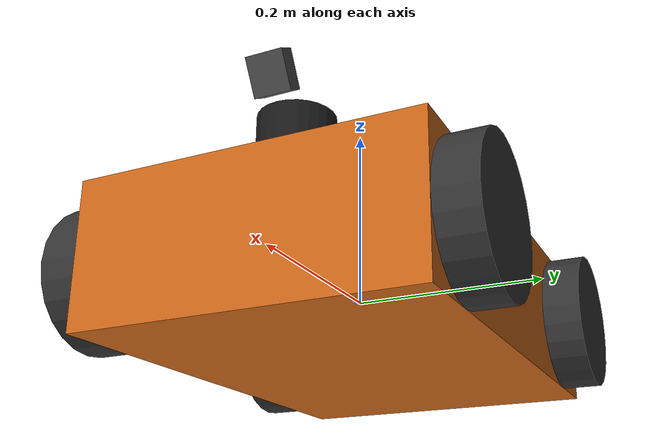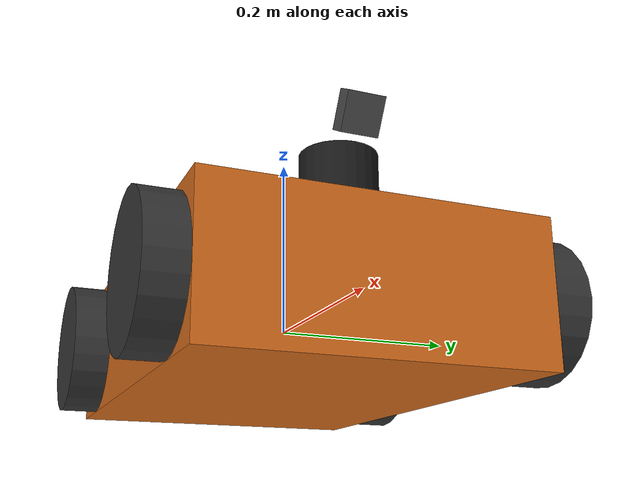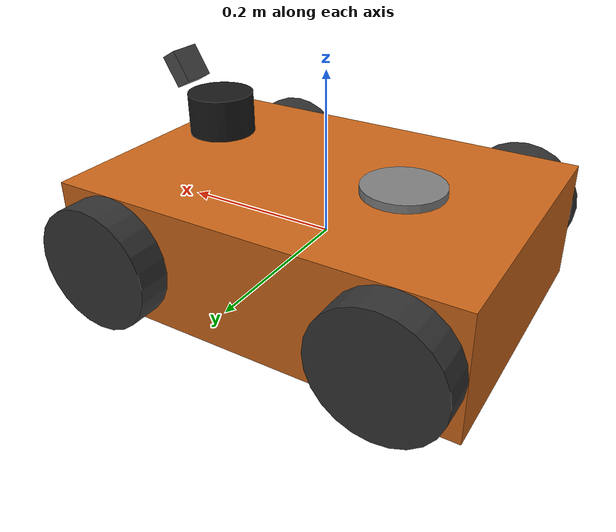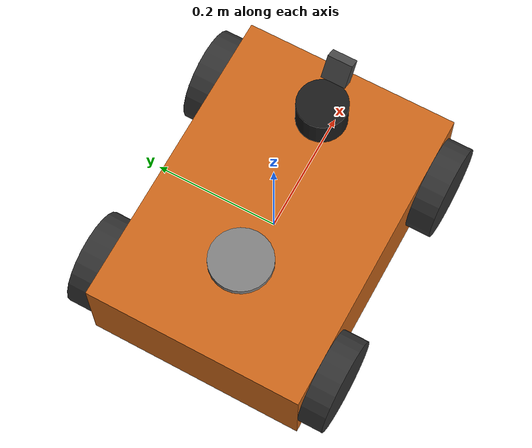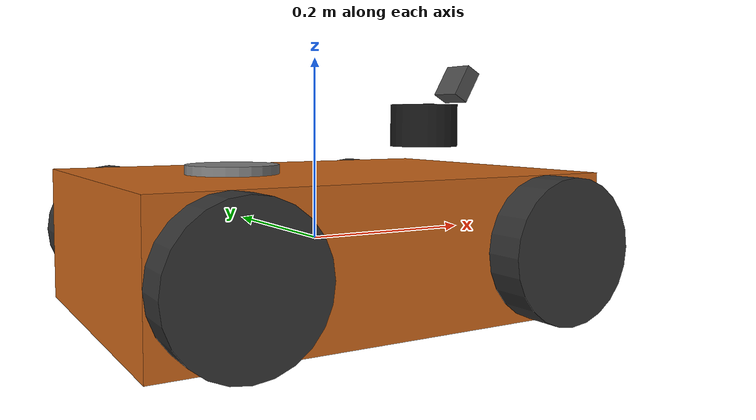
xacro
<?xml version="1.0"?>
<robot xmlns:xacro="http://www.ros.org/wiki/xacro">

  <!-- ===================== PROPERTIES ===================== -->
  <xacro:property name="base_length" value="0.5"/>
  <xacro:property name="base_width" value="0.35"/>
  <xacro:property name="base_height" value="0.15"/>
  <xacro:property name="wheel_radius" value="0.075"/>
  <xacro:property name="wheel_width" value="0.04"/>
  <xacro:property name="wheel_separation" value="0.35"/>
  <xacro:property name="wheel_base" value="0.35"/>

  <!-- ===================== INERTIA MACROS ===================== -->
  <xacro:macro name="box_inertia" params="m x y z">
    <inertia ixx="${m*(y*y+z*z)/12.0}" ixy="0.0" ixz="0.0"
             iyy="${m*(x*x+z*z)/12.0}" iyz="0.0"
             izz="${m*(x*x+y*y)/12.0}"/>
  </xacro:macro>

  <xacro:macro name="cylinder_inertia" params="m r h">
    <inertia ixx="${m*(3*r*r+h*h)/12.0}" ixy="0.0" ixz="0.0"
             iyy="${m*(3*r*r+h*h)/12.0}" iyz="0.0"
             izz="${m*r*r/2.0}"/>
  </xacro:macro>

  <!-- ===================== WHEEL MACRO ===================== -->
  <xacro:macro name="wheel" params="prefix x_offset y_offset">
    <joint name="${prefix}_joint" type="continuous">
      <parent link="body_link"/>
      <child link="${prefix}_link"/>
      <origin xyz="${x_offset} ${y_offset} 0" rpy="${-pi/2} 0 0"/>
      <axis xyz="0 0 1"/>
      <dynamics damping="0.1" friction="0.1"/>
    </joint>

    <link name="${prefix}_link">
      <visual>
        <geometry>
          <cylinder radius="${wheel_radius}" length="${wheel_width}"/>
        </geometry>
        <material name="wheel_material">
          <color rgba="0.2 0.2 0.2 1.0"/>
        </material>
      </visual>
      <collision>
        <geometry>
          <cylinder radius="${wheel_radius}" length="${wheel_width}"/>
        </geometry>
      </collision>
      <inertial>
        <mass value="0.5"/>
        <xacro:cylinder_inertia m="0.5" r="${wheel_radius}" h="${wheel_width}"/>
      </inertial>
    </link>
  </xacro:macro>

  <!-- ===================== BODY LINK ===================== -->
  <link name="body_link">
    <visual>
      <geometry>
        <box size="${base_length} ${base_width} ${base_height}"/>
      </geometry>
      <material name="base_material">
        <color rgba="0.8 0.4 0.1 1.0"/>
      </material>
    </visual>
    <collision>
      <geometry>
        <box size="${base_length} ${base_width} ${base_height}"/>
      </geometry>
    </collision>
    <inertial>
      <mass value="10.0"/>
      <xacro:box_inertia m="10.0" x="${base_length}" y="${base_width}" z="${base_height}"/>
    </inertial>
  </link>

  <!-- ===================== WHEELS ===================== -->
  <xacro:wheel prefix="front_left" x_offset="${wheel_base/2}" y_offset="${wheel_separation/2 + wheel_width/2}"/>
  <xacro:wheel prefix="front_right" x_offset="${wheel_base/2}" y_offset="${-wheel_separation/2 - wheel_width/2}"/>
  <xacro:wheel prefix="back_left" x_offset="${-wheel_base/2}" y_offset="${wheel_separation/2 + wheel_width/2}"/>
  <xacro:wheel prefix="back_right" x_offset="${-wheel_base/2}" y_offset="${-wheel_separation/2 - wheel_width/2}"/>

  <!-- ===================== ARM MOUNT ===================== -->
  <!--
    LEARNING: The arm_mount_link is where the arm attaches.
    This creates a clear separation between base and arm TF chains.
  -->
  <joint name="arm_mount_joint" type="fixed">
    <parent link="body_link"/>
    <child link="arm_mount_link"/>
    <origin xyz="-0.1 0 ${base_height/2}" rpy="0 0 0"/>
  </joint>

  <link name="arm_mount_link">
    <visual>
      <geometry>
        <cylinder radius="0.05" length="0.02"/>
      </geometry>
      <material name="mount_material">
        <color rgba="0.5 0.5 0.5 1.0"/>
      </material>
    </visual>
    <collision>
      <geometry>
        <cylinder radius="0.05" length="0.02"/>
      </geometry>
    </collision>
    <inertial>
      <mass value="0.1"/>
      <xacro:cylinder_inertia m="0.1" r="0.05" h="0.02"/>
    </inertial>
  </link>

  <!-- ===================== CAMERA MOUNT ===================== -->
  <!--
    LEARNING: Camera is eye-to-base (fixed on body).
    This provides a stable view of the workspace.
  -->
  <joint name="camera_mount_joint" type="fixed">
    <parent link="body_link"/>
    <child link="camera_mount_link"/>
    <origin xyz="${base_length/2 - 0.05} 0 ${base_height/2 + 0.1}" rpy="0 ${pi/6} 0"/>
  </joint>

  <link name="camera_mount_link">
    <visual>
      <geometry>
        <box size="0.02 0.04 0.04"/>
      </geometry>
      <material name="camera_mount_mat">
        <color rgba="0.3 0.3 0.3 1.0"/>
      </material>
    </visual>
    <inertial>
      <mass value="0.05"/>
      <xacro:box_inertia m="0.05" x="0.02" y="0.04" z="0.04"/>
    </inertial>
  </link>

  <!-- ===================== LIDAR MOUNT ===================== -->
  <joint name="lidar_joint" type="fixed">
    <parent link="body_link"/>
    <child link="laser_frame"/>
    <origin xyz="${base_length/2 - 0.1} 0 ${base_height/2 + 0.05}" rpy="0 0 0"/>
  </joint>

  <link name="laser_frame">
    <visual>
      <geometry>
        <cylinder radius="0.04" length="0.05"/>
      </geometry>
      <material name="lidar_mat">
        <color rgba="0.1 0.1 0.1 1.0"/>
      </material>
    </visual>
    <inertial>
      <mass value="0.2"/>
      <xacro:cylinder_inertia m="0.2" r="0.04" h="0.05"/>
    </inertial>
  </link>

</robot>
